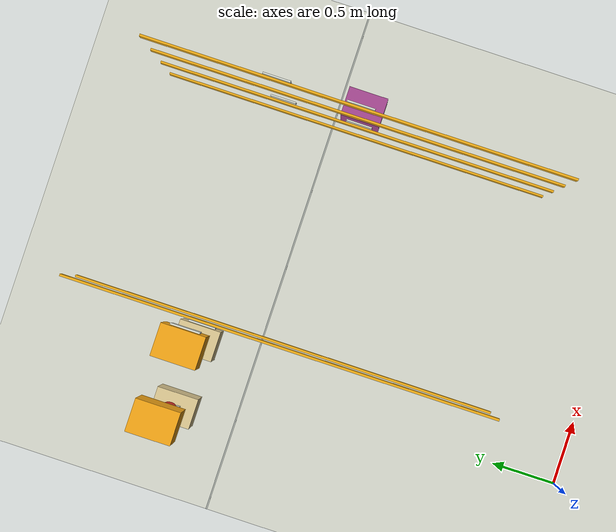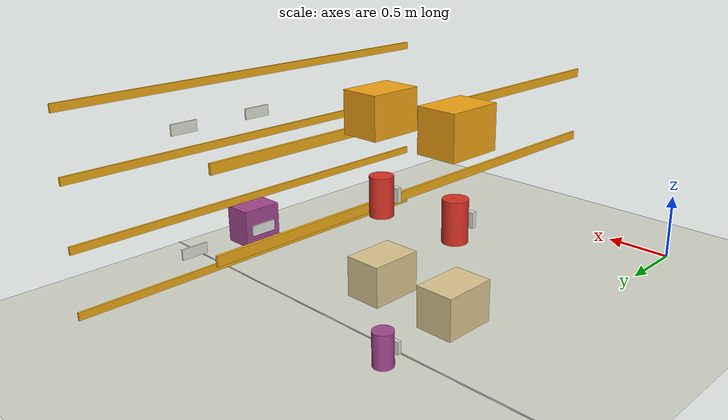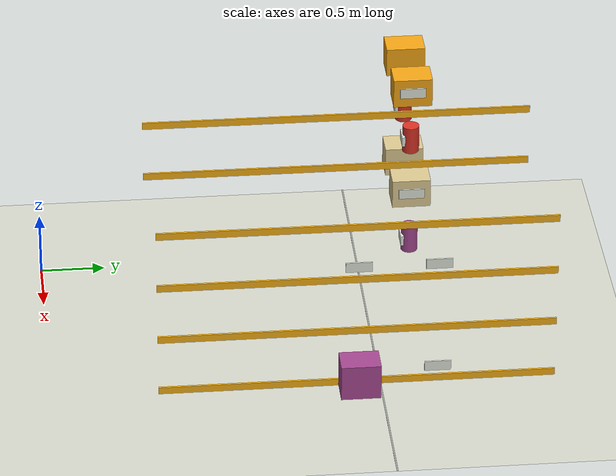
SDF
<sdf version="1.6">
 <world name="convenience_store">
  <model name="ground_plane">
   <static>true</static>
   <link name="ground_link">
    <collision name="ground_collision">
     <geometry><plane><normal>0 0 1</normal><size>100 100</size></plane></geometry>
     <surface><friction><ode><mu>1.0</mu><mu2>1.0</mu2></ode></friction></surface>
    </collision>
    <visual name="ground_visual">
     <geometry><plane><normal>0 0 1</normal><size>100 100</size></plane></geometry>
     <material><ambient>.84 .85 .80 1</ambient><diffuse>.84 .85 .80 1</diffuse></material>
    </visual>
   </link>
  </model>
  <model name="tile_y_15">
   <static>true</static>
   <pose>0 2.5 0.001 0 0 0</pose>
   <link name="body">
    <visual name="body_visual">
     <geometry><box><size>12 0.012 0.001</size></box></geometry>
     <material><ambient>.63 .65 .63 1</ambient><diffuse>.63 .65 .63 1</diffuse></material>
    </visual>
   </link>
  </model>
  <model name="gondola_1_goods_0_1_3">
   <static>true</static>
   <pose>0.25 2.8999999999999995 0.31 0 0 0</pose>
   <link name="body">
    <collision name="body_collision">
     <geometry><cylinder><length>0.22</length><radius>0.065</radius></cylinder></geometry>
     <surface><friction><ode><mu>.8</mu><mu2>.8</mu2></ode></friction></surface>
    </collision>
    <visual name="body_visual">
     <geometry><cylinder><length>0.22</length><radius>0.065</radius></cylinder></geometry>
     <material><ambient>.65 .28 .57 1</ambient><diffuse>.65 .28 .57 1</diffuse></material>
    </visual>
   </link>
  </model>
  <model name="gondola_1_goods_0_1_3_label">
   <static>true</static>
   <pose>0.25 2.8379999999999996 0.31 0 0 0</pose>
   <link name="body">
    <visual name="body_visual">
     <geometry><box><size>0.135 0.025 0.08</size></box></geometry>
     <material><ambient>.88 .90 .86 1</ambient><diffuse>.88 .90 .86 1</diffuse></material>
    </visual>
   </link>
  </model>
  <model name="gondola_1_goods_1_-1_3">
   <static>true</static>
   <pose>-0.25 2.8999999999999995 0.765 0 0 0</pose>
   <link name="body">
    <collision name="body_collision">
     <geometry><box><size>0.22 0.3 0.23</size></box></geometry>
     <surface><friction><ode><mu>.8</mu><mu2>.8</mu2></ode></friction></surface>
    </collision>
    <visual name="body_visual">
     <geometry><box><size>0.22 0.3 0.23</size></box></geometry>
     <material><ambient>.87 .79 .57 1</ambient><diffuse>.87 .79 .57 1</diffuse></material>
    </visual>
   </link>
  </model>
  <model name="gondola_1_goods_1_1_3">
   <static>true</static>
   <pose>0.25 2.8999999999999995 0.765 0 0 0</pose>
   <link name="body">
    <collision name="body_collision">
     <geometry><box><size>0.22 0.3 0.23</size></box></geometry>
     <surface><friction><ode><mu>.8</mu><mu2>.8</mu2></ode></friction></surface>
    </collision>
    <visual name="body_visual">
     <geometry><box><size>0.22 0.3 0.23</size></box></geometry>
     <material><ambient>.87 .79 .57 1</ambient><diffuse>.87 .79 .57 1</diffuse></material>
    </visual>
   </link>
  </model>
  <model name="gondola_1_goods_1_1_3_label">
   <static>true</static>
   <pose>0.366 2.8999999999999995 0.77 0 0 0</pose>
   <link name="body">
    <visual name="body_visual">
     <geometry><box><size>0.012 0.2 0.08</size></box></geometry>
     <material><ambient>.88 .90 .86 1</ambient><diffuse>.88 .90 .86 1</diffuse></material>
    </visual>
   </link>
  </model>
  <model name="gondola_1_goods_2_-1_3">
   <static>true</static>
   <pose>-0.25 2.8999999999999995 1.2100000000000002 0 0 0</pose>
   <link name="body">
    <collision name="body_collision">
     <geometry><cylinder><length>0.22</length><radius>0.065</radius></cylinder></geometry>
     <surface><friction><ode><mu>.8</mu><mu2>.8</mu2></ode></friction></surface>
    </collision>
    <visual name="body_visual">
     <geometry><cylinder><length>0.22</length><radius>0.065</radius></cylinder></geometry>
     <material><ambient>.86 .20 .15 1</ambient><diffuse>.86 .20 .15 1</diffuse></material>
    </visual>
   </link>
  </model>
  <model name="gondola_1_goods_2_-1_3_label">
   <static>true</static>
   <pose>-0.25 2.8379999999999996 1.2100000000000002 0 0 0</pose>
   <link name="body">
    <visual name="body_visual">
     <geometry><box><size>0.135 0.025 0.08</size></box></geometry>
     <material><ambient>.88 .90 .86 1</ambient><diffuse>.88 .90 .86 1</diffuse></material>
    </visual>
   </link>
  </model>
  <model name="gondola_1_price_2_1">
   <static>true</static>
   <pose>0.43 2.3 1.0750000000000002 0 0 0</pose>
   <link name="body">
    <visual name="body_visual">
     <geometry><box><size>0.016 3.0 0.055</size></box></geometry>
     <material><ambient>.95 .68 .08 1</ambient><diffuse>.95 .68 .08 1</diffuse></material>
    </visual>
   </link>
  </model>
  <model name="gondola_1_goods_2_1_3">
   <static>true</static>
   <pose>0.25 2.8999999999999995 1.2100000000000002 0 0 0</pose>
   <link name="body">
    <collision name="body_collision">
     <geometry><cylinder><length>0.22</length><radius>0.065</radius></cylinder></geometry>
     <surface><friction><ode><mu>.8</mu><mu2>.8</mu2></ode></friction></surface>
    </collision>
    <visual name="body_visual">
     <geometry><cylinder><length>0.22</length><radius>0.065</radius></cylinder></geometry>
     <material><ambient>.86 .20 .15 1</ambient><diffuse>.86 .20 .15 1</diffuse></material>
    </visual>
   </link>
  </model>
  <model name="gondola_1_goods_2_1_3_label">
   <static>true</static>
   <pose>0.25 2.8379999999999996 1.2100000000000002 0 0 0</pose>
   <link name="body">
    <visual name="body_visual">
     <geometry><box><size>0.135 0.025 0.08</size></box></geometry>
     <material><ambient>.88 .90 .86 1</ambient><diffuse>.88 .90 .86 1</diffuse></material>
    </visual>
   </link>
  </model>
  <model name="gondola_1_goods_3_-1_3">
   <static>true</static>
   <pose>-0.25 2.8999999999999995 1.665 0 0 0</pose>
   <link name="body">
    <collision name="body_collision">
     <geometry><box><size>0.22 0.3 0.23</size></box></geometry>
     <surface><friction><ode><mu>.8</mu><mu2>.8</mu2></ode></friction></surface>
    </collision>
    <visual name="body_visual">
     <geometry><box><size>0.22 0.3 0.23</size></box></geometry>
     <material><ambient>.96 .65 .08 1</ambient><diffuse>.96 .65 .08 1</diffuse></material>
    </visual>
   </link>
  </model>
  <model name="gondola_1_price_3_1">
   <static>true</static>
   <pose>0.43 2.3 1.5250000000000001 0 0 0</pose>
   <link name="body">
    <visual name="body_visual">
     <geometry><box><size>0.016 3.0 0.055</size></box></geometry>
     <material><ambient>.95 .68 .08 1</ambient><diffuse>.95 .68 .08 1</diffuse></material>
    </visual>
   </link>
  </model>
  <model name="gondola_1_goods_3_1_3">
   <static>true</static>
   <pose>0.25 2.8999999999999995 1.665 0 0 0</pose>
   <link name="body">
    <collision name="body_collision">
     <geometry><box><size>0.22 0.3 0.23</size></box></geometry>
     <surface><friction><ode><mu>.8</mu><mu2>.8</mu2></ode></friction></surface>
    </collision>
    <visual name="body_visual">
     <geometry><box><size>0.22 0.3 0.23</size></box></geometry>
     <material><ambient>.96 .65 .08 1</ambient><diffuse>.96 .65 .08 1</diffuse></material>
    </visual>
   </link>
  </model>
  <model name="gondola_1_goods_3_1_3_label">
   <static>true</static>
   <pose>0.366 2.8999999999999995 1.67 0 0 0</pose>
   <link name="body">
    <visual name="body_visual">
     <geometry><box><size>0.012 0.2 0.08</size></box></geometry>
     <material><ambient>.88 .90 .86 1</ambient><diffuse>.88 .90 .86 1</diffuse></material>
    </visual>
   </link>
  </model>
  <model name="gondola_2_price_0_-1">
   <static>true</static>
   <pose>2.07 2.3 0.17500000000000002 0 0 0</pose>
   <link name="body">
    <visual name="body_visual">
     <geometry><box><size>0.016 3.0 0.055</size></box></geometry>
     <material><ambient>.95 .68 .08 1</ambient><diffuse>.95 .68 .08 1</diffuse></material>
    </visual>
   </link>
  </model>
  <model name="gondola_2_goods_0_-1_2">
   <static>true</static>
   <pose>2.25 2.3 0.34 0 0 0</pose>
   <link name="body">
    <collision name="body_collision">
     <geometry><box><size>0.22 0.3 0.28</size></box></geometry>
     <surface><friction><ode><mu>.8</mu><mu2>.8</mu2></ode></friction></surface>
    </collision>
    <visual name="body_visual">
     <geometry><box><size>0.22 0.3 0.28</size></box></geometry>
     <material><ambient>.65 .28 .57 1</ambient><diffuse>.65 .28 .57 1</diffuse></material>
    </visual>
   </link>
  </model>
  <model name="gondola_2_goods_0_-1_2_label">
   <static>true</static>
   <pose>2.134 2.3 0.32 0 0 0</pose>
   <link name="body">
    <visual name="body_visual">
     <geometry><box><size>0.012 0.2 0.08</size></box></geometry>
     <material><ambient>.88 .90 .86 1</ambient><diffuse>.88 .90 .86 1</diffuse></material>
    </visual>
   </link>
  </model>
  <model name="gondola_2_goods_0_-1_3_label">
   <static>true</static>
   <pose>2.134 2.8999999999999995 0.32 0 0 0</pose>
   <link name="body">
    <visual name="body_visual">
     <geometry><box><size>0.012 0.2 0.08</size></box></geometry>
     <material><ambient>.88 .90 .86 1</ambient><diffuse>.88 .90 .86 1</diffuse></material>
    </visual>
   </link>
  </model>
  <model name="gondola_2_price_1_-1">
   <static>true</static>
   <pose>2.07 2.3 0.625 0 0 0</pose>
   <link name="body">
    <visual name="body_visual">
     <geometry><box><size>0.016 3.0 0.055</size></box></geometry>
     <material><ambient>.95 .68 .08 1</ambient><diffuse>.95 .68 .08 1</diffuse></material>
    </visual>
   </link>
  </model>
  <model name="gondola_2_price_2_-1">
   <static>true</static>
   <pose>2.07 2.3 1.0750000000000002 0 0 0</pose>
   <link name="body">
    <visual name="body_visual">
     <geometry><box><size>0.016 3.0 0.055</size></box></geometry>
     <material><ambient>.95 .68 .08 1</ambient><diffuse>.95 .68 .08 1</diffuse></material>
    </visual>
   </link>
  </model>
  <model name="gondola_2_goods_2_-1_2_label">
   <static>true</static>
   <pose>2.134 2.3 1.2200000000000002 0 0 0</pose>
   <link name="body">
    <visual name="body_visual">
     <geometry><box><size>0.012 0.2 0.08</size></box></geometry>
     <material><ambient>.88 .90 .86 1</ambient><diffuse>.88 .90 .86 1</diffuse></material>
    </visual>
   </link>
  </model>
  <model name="gondola_2_goods_2_-1_3_label">
   <static>true</static>
   <pose>2.134 2.8999999999999995 1.2200000000000002 0 0 0</pose>
   <link name="body">
    <visual name="body_visual">
     <geometry><box><size>0.012 0.2 0.08</size></box></geometry>
     <material><ambient>.88 .90 .86 1</ambient><diffuse>.88 .90 .86 1</diffuse></material>
    </visual>
   </link>
  </model>
  <model name="gondola_2_price_3_-1">
   <static>true</static>
   <pose>2.07 2.3 1.5250000000000001 0 0 0</pose>
   <link name="body">
    <visual name="body_visual">
     <geometry><box><size>0.016 3.0 0.055</size></box></geometry>
     <material><ambient>.95 .68 .08 1</ambient><diffuse>.95 .68 .08 1</diffuse></material>
    </visual>
   </link>
  </model>
 </world>
</sdf>
